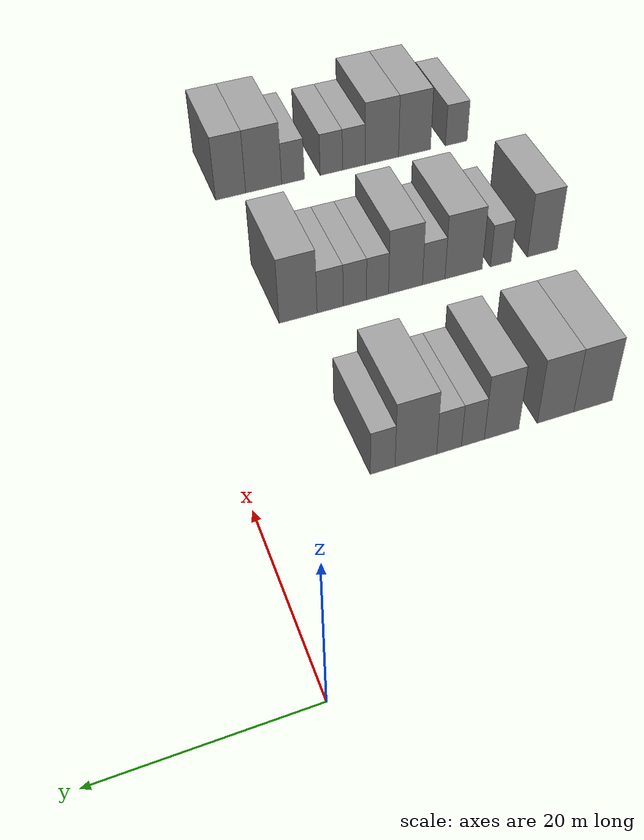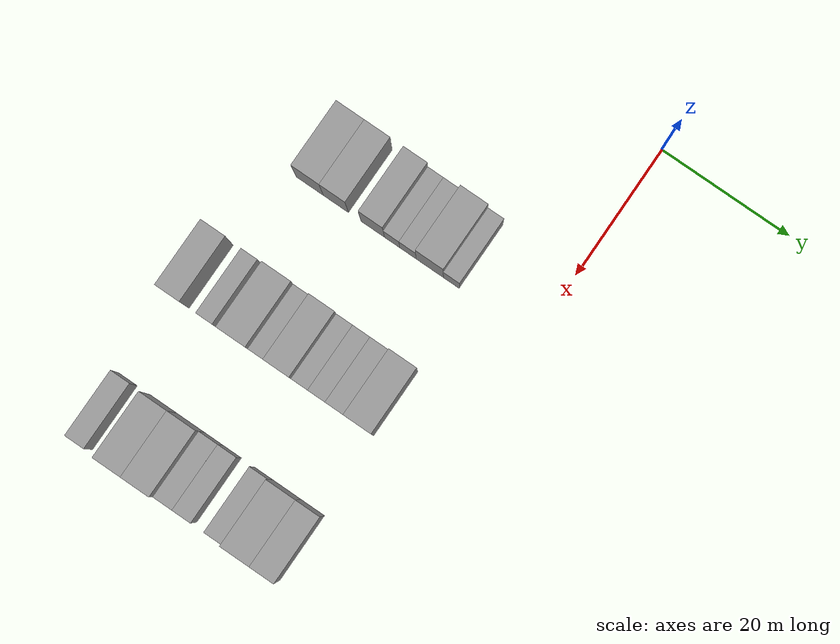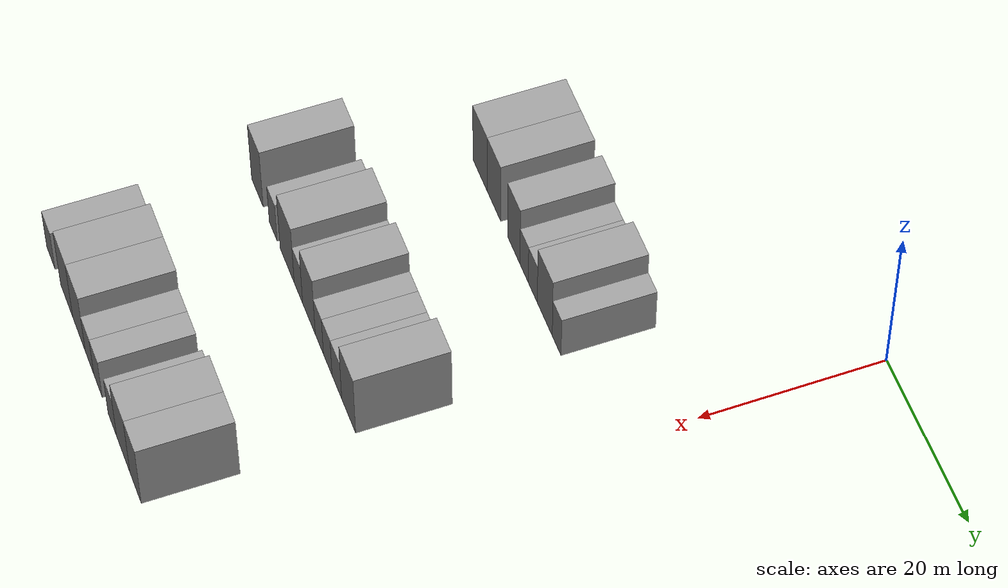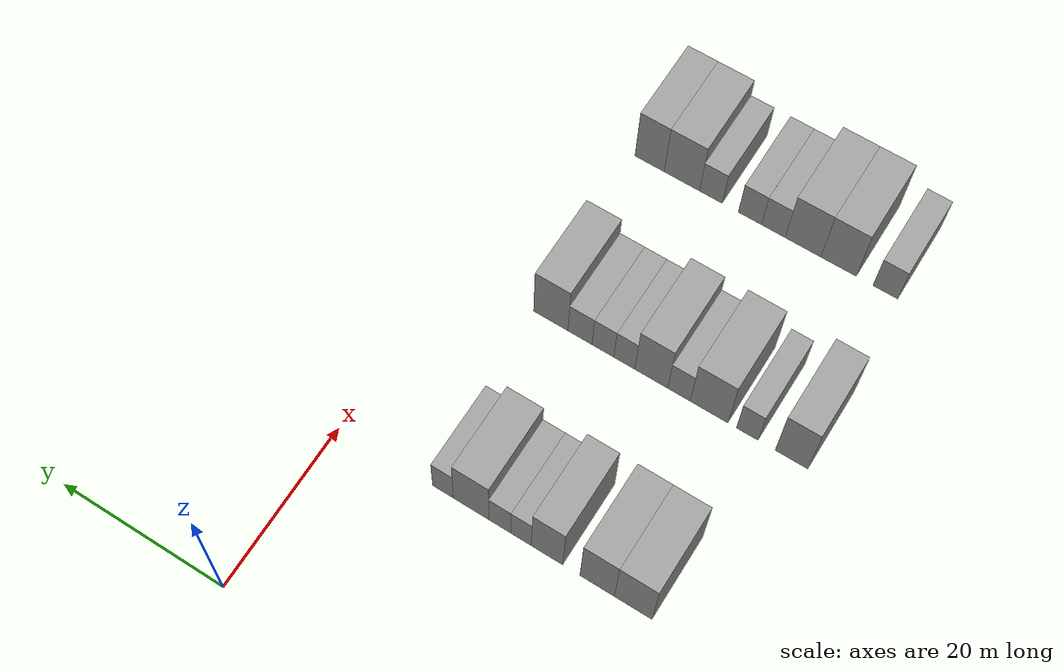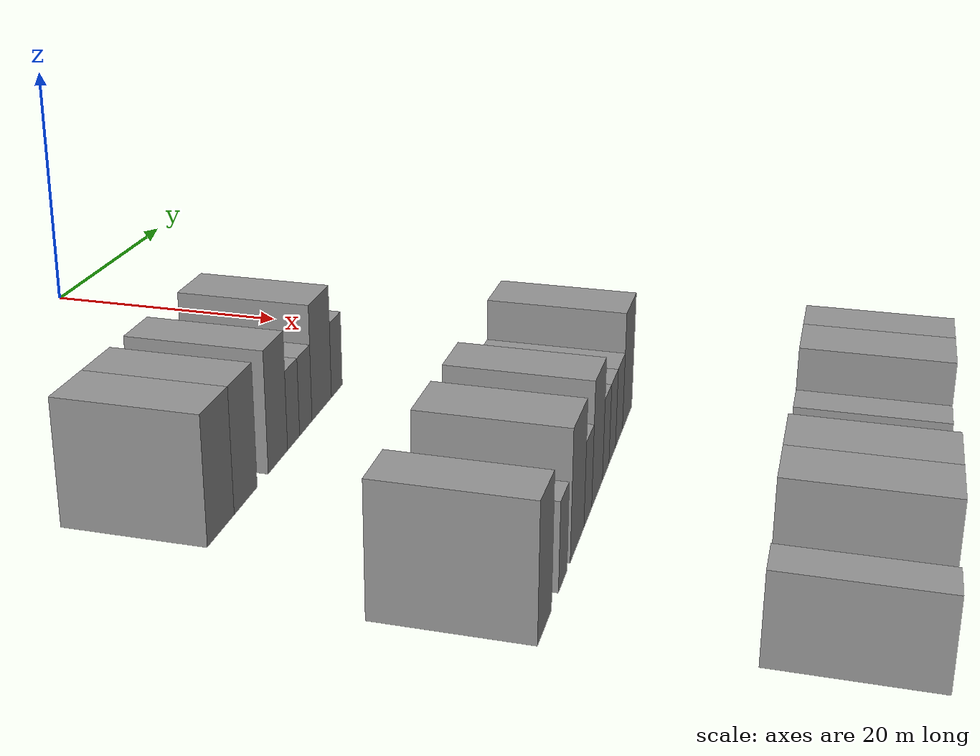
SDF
<sdf version="1.6">
 <world name="default">
  <model name="building_57">
   <static>1</static>
   <pose>25.0000 -35.1244 0 0.000000 0.000000 0.000000</pose>
   <link name="link">
    <pose>0 0 4.50 0 0 0</pose>
    <collision name="collision"><geometry><box><size>10.0000 4.3123 9.0000</size></box></geometry></collision>
    <visual name="visual">
     <cast_shadows>0</cast_shadows>
     <geometry><box><size>10.0000 4.3123 9.0000</size></box></geometry>
     <material>
      <script>
       <uri>model://grey_wall/materials/scripts</uri>
       <uri>model://grey_wall/materials/textures</uri>
       <name>vrc/grey_wall</name>
      </script>
     </material>
    </visual>
   </link>
  </model>
  <model name="building_58">
   <static>1</static>
   <pose>25.0000 -30.9796 0 0.000000 0.000000 0.000000</pose>
   <link name="link">
    <pose>0 0 4.50 0 0 0</pose>
    <collision name="collision"><geometry><box><size>10.0000 3.9772 9.0000</size></box></geometry></collision>
    <visual name="visual">
     <cast_shadows>0</cast_shadows>
     <geometry><box><size>10.0000 3.9772 9.0000</size></box></geometry>
     <material>
      <script>
       <uri>model://grey_wall/materials/scripts</uri>
       <uri>model://grey_wall/materials/textures</uri>
       <name>vrc/grey_wall</name>
      </script>
     </material>
    </visual>
   </link>
  </model>
  <model name="building_59">
   <static>1</static>
   <pose>25.0000 -25.1444 0 0.000000 0.000000 0.000000</pose>
   <link name="link">
    <pose>0 0 4.50 0 0 0</pose>
    <collision name="collision"><geometry><box><size>10.0000 3.6933 9.0000</size></box></geometry></collision>
    <visual name="visual">
     <cast_shadows>0</cast_shadows>
     <geometry><box><size>10.0000 3.6933 9.0000</size></box></geometry>
     <material>
      <script>
       <uri>model://grey_wall/materials/scripts</uri>
       <uri>model://grey_wall/materials/textures</uri>
       <name>vrc/grey_wall</name>
      </script>
     </material>
    </visual>
   </link>
  </model>
  <model name="building_60">
   <static>1</static>
   <pose>25.0000 -22.0901 0 0.000000 0.000000 0.000000</pose>
   <link name="link">
    <pose>0 0 3.00 0 0 0</pose>
    <collision name="collision"><geometry><box><size>10.0000 2.4154 6.0000</size></box></geometry></collision>
    <visual name="visual">
     <cast_shadows>0</cast_shadows>
     <geometry><box><size>10.0000 2.4154 6.0000</size></box></geometry>
     <material>
      <script>
       <uri>model://grey_wall/materials/scripts</uri>
       <uri>model://grey_wall/materials/textures</uri>
       <name>vrc/grey_wall</name>
      </script>
     </material>
    </visual>
   </link>
  </model>
  <model name="building_61">
   <static>1</static>
   <pose>25.0000 -19.5901 0 0.000000 0.000000 0.000000</pose>
   <link name="link">
    <pose>0 0 3.00 0 0 0</pose>
    <collision name="collision"><geometry><box><size>10.0000 2.5846 6.0000</size></box></geometry></collision>
    <visual name="visual">
     <cast_shadows>0</cast_shadows>
     <geometry><box><size>10.0000 2.5846 6.0000</size></box></geometry>
     <material>
      <script>
       <uri>model://grey_wall/materials/scripts</uri>
       <uri>model://grey_wall/materials/textures</uri>
       <name>vrc/grey_wall</name>
      </script>
     </material>
    </visual>
   </link>
  </model>
  <model name="building_62">
   <static>1</static>
   <pose>25.0000 -16.1633 0 0.000000 0.000000 0.000000</pose>
   <link name="link">
    <pose>0 0 4.50 0 0 0</pose>
    <collision name="collision"><geometry><box><size>10.0000 4.2689 9.0000</size></box></geometry></collision>
    <visual name="visual">
     <cast_shadows>0</cast_shadows>
     <geometry><box><size>10.0000 4.2689 9.0000</size></box></geometry>
     <material>
      <script>
       <uri>model://grey_wall/materials/scripts</uri>
       <uri>model://grey_wall/materials/textures</uri>
       <name>vrc/grey_wall</name>
      </script>
     </material>
    </visual>
   </link>
  </model>
  <model name="building_63">
   <static>1</static>
   <pose>25.0000 -12.7750 0 0.000000 0.000000 0.000000</pose>
   <link name="link">
    <pose>0 0 3.00 0 0 0</pose>
    <collision name="collision"><geometry><box><size>10.0000 2.5077 6.0000</size></box></geometry></collision>
    <visual name="visual">
     <cast_shadows>0</cast_shadows>
     <geometry><box><size>10.0000 2.5077 6.0000</size></box></geometry>
     <material>
      <script>
       <uri>model://grey_wall/materials/scripts</uri>
       <uri>model://grey_wall/materials/textures</uri>
       <name>vrc/grey_wall</name>
      </script>
     </material>
    </visual>
   </link>
  </model>
  <model name="building_173">
   <static>1</static>
   <pose>47.0000 -40.7774 0 0.000000 0.000000 0.000000</pose>
   <link name="link">
    <pose>0 0 4.50 0 0 0</pose>
    <collision name="collision"><geometry><box><size>10.0000 3.7800 9.0000</size></box></geometry></collision>
    <visual name="visual">
     <cast_shadows>0</cast_shadows>
     <geometry><box><size>10.0000 3.7800 9.0000</size></box></geometry>
     <material>
      <script>
       <uri>model://grey_wall/materials/scripts</uri>
       <uri>model://grey_wall/materials/textures</uri>
       <name>vrc/grey_wall</name>
      </script>
     </material>
    </visual>
   </link>
  </model>
  <model name="building_174">
   <static>1</static>
   <pose>47.0000 -35.6167 0 0.000000 0.000000 0.000000</pose>
   <link name="link">
    <pose>0 0 3.00 0 0 0</pose>
    <collision name="collision"><geometry><box><size>10.0000 2.5415 6.0000</size></box></geometry></collision>
    <visual name="visual">
     <cast_shadows>0</cast_shadows>
     <geometry><box><size>10.0000 2.5415 6.0000</size></box></geometry>
     <material>
      <script>
       <uri>model://grey_wall/materials/scripts</uri>
       <uri>model://grey_wall/materials/textures</uri>
       <name>vrc/grey_wall</name>
      </script>
     </material>
    </visual>
   </link>
  </model>
  <model name="building_175">
   <static>1</static>
   <pose>47.0000 -31.0996 0 0.000000 0.000000 0.000000</pose>
   <link name="link">
    <pose>0 0 4.50 0 0 0</pose>
    <collision name="collision"><geometry><box><size>10.0000 4.4926 9.0000</size></box></geometry></collision>
    <visual name="visual">
     <cast_shadows>0</cast_shadows>
     <geometry><box><size>10.0000 4.4926 9.0000</size></box></geometry>
     <material>
      <script>
       <uri>model://grey_wall/materials/scripts</uri>
       <uri>model://grey_wall/materials/textures</uri>
       <name>vrc/grey_wall</name>
      </script>
     </material>
    </visual>
   </link>
  </model>
  <model name="building_176">
   <static>1</static>
   <pose>47.0000 -27.5142 0 0.000000 0.000000 0.000000</pose>
   <link name="link">
    <pose>0 0 3.00 0 0 0</pose>
    <collision name="collision"><geometry><box><size>10.0000 2.6783 6.0000</size></box></geometry></collision>
    <visual name="visual">
     <cast_shadows>0</cast_shadows>
     <geometry><box><size>10.0000 2.6783 6.0000</size></box></geometry>
     <material>
      <script>
       <uri>model://grey_wall/materials/scripts</uri>
       <uri>model://grey_wall/materials/textures</uri>
       <name>vrc/grey_wall</name>
      </script>
     </material>
    </visual>
   </link>
  </model>
  <model name="building_177">
   <static>1</static>
   <pose>47.0000 -24.1858 0 0.000000 0.000000 0.000000</pose>
   <link name="link">
    <pose>0 0 4.50 0 0 0</pose>
    <collision name="collision"><geometry><box><size>10.0000 3.9785 9.0000</size></box></geometry></collision>
    <visual name="visual">
     <cast_shadows>0</cast_shadows>
     <geometry><box><size>10.0000 3.9785 9.0000</size></box></geometry>
     <material>
      <script>
       <uri>model://grey_wall/materials/scripts</uri>
       <uri>model://grey_wall/materials/textures</uri>
       <name>vrc/grey_wall</name>
      </script>
     </material>
    </visual>
   </link>
  </model>
  <model name="building_178">
   <static>1</static>
   <pose>47.0000 -20.9235 0 0.000000 0.000000 0.000000</pose>
   <link name="link">
    <pose>0 0 3.00 0 0 0</pose>
    <collision name="collision"><geometry><box><size>10.0000 2.5461 6.0000</size></box></geometry></collision>
    <visual name="visual">
     <cast_shadows>0</cast_shadows>
     <geometry><box><size>10.0000 2.5461 6.0000</size></box></geometry>
     <material>
      <script>
       <uri>model://grey_wall/materials/scripts</uri>
       <uri>model://grey_wall/materials/textures</uri>
       <name>vrc/grey_wall</name>
      </script>
     </material>
    </visual>
   </link>
  </model>
  <model name="building_179">
   <static>1</static>
   <pose>47.0000 -18.3154 0 0.000000 0.000000 0.000000</pose>
   <link name="link">
    <pose>0 0 3.00 0 0 0</pose>
    <collision name="collision"><geometry><box><size>10.0000 2.6702 6.0000</size></box></geometry></collision>
    <visual name="visual">
     <cast_shadows>0</cast_shadows>
     <geometry><box><size>10.0000 2.6702 6.0000</size></box></geometry>
     <material>
      <script>
       <uri>model://grey_wall/materials/scripts</uri>
       <uri>model://grey_wall/materials/textures</uri>
       <name>vrc/grey_wall</name>
      </script>
     </material>
    </visual>
   </link>
  </model>
  <model name="building_180">
   <static>1</static>
   <pose>47.0000 -15.4980 0 0.000000 0.000000 0.000000</pose>
   <link name="link">
    <pose>0 0 3.00 0 0 0</pose>
    <collision name="collision"><geometry><box><size>10.0000 2.9646 6.0000</size></box></geometry></collision>
    <visual name="visual">
     <cast_shadows>0</cast_shadows>
     <geometry><box><size>10.0000 2.9646 6.0000</size></box></geometry>
     <material>
      <script>
       <uri>model://grey_wall/materials/scripts</uri>
       <uri>model://grey_wall/materials/textures</uri>
       <name>vrc/grey_wall</name>
      </script>
     </material>
    </visual>
   </link>
  </model>
  <model name="building_181">
   <static>1</static>
   <pose>47.0000 -11.8893 0 0.000000 0.000000 0.000000</pose>
   <link name="link">
    <pose>0 0 4.50 0 0 0</pose>
    <collision name="collision"><geometry><box><size>10.0000 4.2527 9.0000</size></box></geometry></collision>
    <visual name="visual">
     <cast_shadows>0</cast_shadows>
     <geometry><box><size>10.0000 4.2527 9.0000</size></box></geometry>
     <material>
      <script>
       <uri>model://grey_wall/materials/scripts</uri>
       <uri>model://grey_wall/materials/textures</uri>
       <name>vrc/grey_wall</name>
      </script>
     </material>
    </visual>
   </link>
  </model>
  <model name="building_301">
   <static>1</static>
   <pose>69.0000 -40.0858 0 0.000000 0.000000 0.000000</pose>
   <link name="link">
    <pose>0 0 3.00 0 0 0</pose>
    <collision name="collision"><geometry><box><size>10.0000 2.9566 6.0000</size></box></geometry></collision>
    <visual name="visual">
     <cast_shadows>0</cast_shadows>
     <geometry><box><size>10.0000 2.9566 6.0000</size></box></geometry>
     <material>
      <script>
       <uri>model://grey_wall/materials/scripts</uri>
       <uri>model://grey_wall/materials/textures</uri>
       <name>vrc/grey_wall</name>
      </script>
     </material>
    </visual>
   </link>
  </model>
  <model name="building_302">
   <static>1</static>
   <pose>69.0000 -34.4725 0 0.000000 0.000000 0.000000</pose>
   <link name="link">
    <pose>0 0 4.50 0 0 0</pose>
    <collision name="collision"><geometry><box><size>10.0000 4.2701 9.0000</size></box></geometry></collision>
    <visual name="visual">
     <cast_shadows>0</cast_shadows>
     <geometry><box><size>10.0000 4.2701 9.0000</size></box></geometry>
     <material>
      <script>
       <uri>model://grey_wall/materials/scripts</uri>
       <uri>model://grey_wall/materials/textures</uri>
       <name>vrc/grey_wall</name>
      </script>
     </material>
    </visual>
   </link>
  </model>
  <model name="building_303">
   <static>1</static>
   <pose>69.0000 -30.1529 0 0.000000 0.000000 0.000000</pose>
   <link name="link">
    <pose>0 0 4.50 0 0 0</pose>
    <collision name="collision"><geometry><box><size>10.0000 4.3692 9.0000</size></box></geometry></collision>
    <visual name="visual">
     <cast_shadows>0</cast_shadows>
     <geometry><box><size>10.0000 4.3692 9.0000</size></box></geometry>
     <material>
      <script>
       <uri>model://grey_wall/materials/scripts</uri>
       <uri>model://grey_wall/materials/textures</uri>
       <name>vrc/grey_wall</name>
      </script>
     </material>
    </visual>
   </link>
  </model>
  <model name="building_304">
   <static>1</static>
   <pose>69.0000 -26.5095 0 0.000000 0.000000 0.000000</pose>
   <link name="link">
    <pose>0 0 3.00 0 0 0</pose>
    <collision name="collision"><geometry><box><size>10.0000 2.9176 6.0000</size></box></geometry></collision>
    <visual name="visual">
     <cast_shadows>0</cast_shadows>
     <geometry><box><size>10.0000 2.9176 6.0000</size></box></geometry>
     <material>
      <script>
       <uri>model://grey_wall/materials/scripts</uri>
       <uri>model://grey_wall/materials/textures</uri>
       <name>vrc/grey_wall</name>
      </script>
     </material>
    </visual>
   </link>
  </model>
  <model name="building_305">
   <static>1</static>
   <pose>69.0000 -23.6128 0 0.000000 0.000000 0.000000</pose>
   <link name="link">
    <pose>0 0 3.00 0 0 0</pose>
    <collision name="collision"><geometry><box><size>10.0000 2.8757 6.0000</size></box></geometry></collision>
    <visual name="visual">
     <cast_shadows>0</cast_shadows>
     <geometry><box><size>10.0000 2.8757 6.0000</size></box></geometry>
     <material>
      <script>
       <uri>model://grey_wall/materials/scripts</uri>
       <uri>model://grey_wall/materials/textures</uri>
       <name>vrc/grey_wall</name>
      </script>
     </material>
    </visual>
   </link>
  </model>
  <model name="building_306">
   <static>1</static>
   <pose>69.0000 -18.7434 0 0.000000 0.000000 0.000000</pose>
   <link name="link">
    <pose>0 0 3.00 0 0 0</pose>
    <collision name="collision"><geometry><box><size>10.0000 2.8631 6.0000</size></box></geometry></collision>
    <visual name="visual">
     <cast_shadows>0</cast_shadows>
     <geometry><box><size>10.0000 2.8631 6.0000</size></box></geometry>
     <material>
      <script>
       <uri>model://grey_wall/materials/scripts</uri>
       <uri>model://grey_wall/materials/textures</uri>
       <name>vrc/grey_wall</name>
      </script>
     </material>
    </visual>
   </link>
  </model>
  <model name="building_307">
   <static>1</static>
   <pose>69.0000 -15.0775 0 0.000000 0.000000 0.000000</pose>
   <link name="link">
    <pose>0 0 4.50 0 0 0</pose>
    <collision name="collision"><geometry><box><size>10.0000 4.4687 9.0000</size></box></geometry></collision>
    <visual name="visual">
     <cast_shadows>0</cast_shadows>
     <geometry><box><size>10.0000 4.4687 9.0000</size></box></geometry>
     <material>
      <script>
       <uri>model://grey_wall/materials/scripts</uri>
       <uri>model://grey_wall/materials/textures</uri>
       <name>vrc/grey_wall</name>
      </script>
     </material>
    </visual>
   </link>
  </model>
  <model name="building_308">
   <static>1</static>
   <pose>69.0000 -10.9860 0 0.000000 0.000000 0.000000</pose>
   <link name="link">
    <pose>0 0 4.50 0 0 0</pose>
    <collision name="collision"><geometry><box><size>10.0000 3.7143 9.0000</size></box></geometry></collision>
    <visual name="visual">
     <cast_shadows>0</cast_shadows>
     <geometry><box><size>10.0000 3.7143 9.0000</size></box></geometry>
     <material>
      <script>
       <uri>model://grey_wall/materials/scripts</uri>
       <uri>model://grey_wall/materials/textures</uri>
       <name>vrc/grey_wall</name>
      </script>
     </material>
    </visual>
   </link>
  </model>
 </world>
</sdf>
